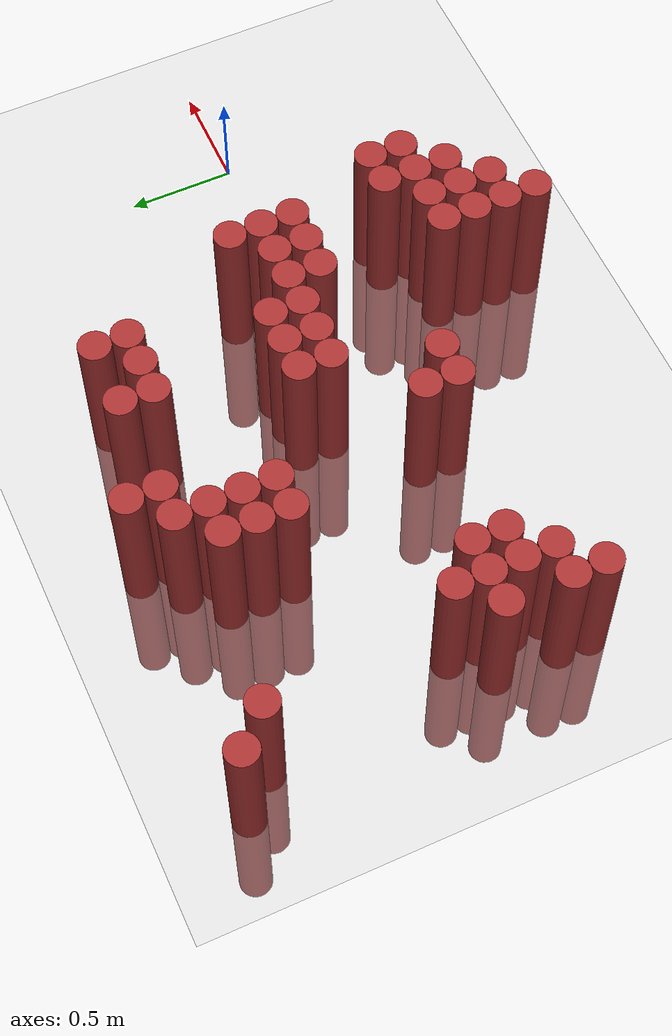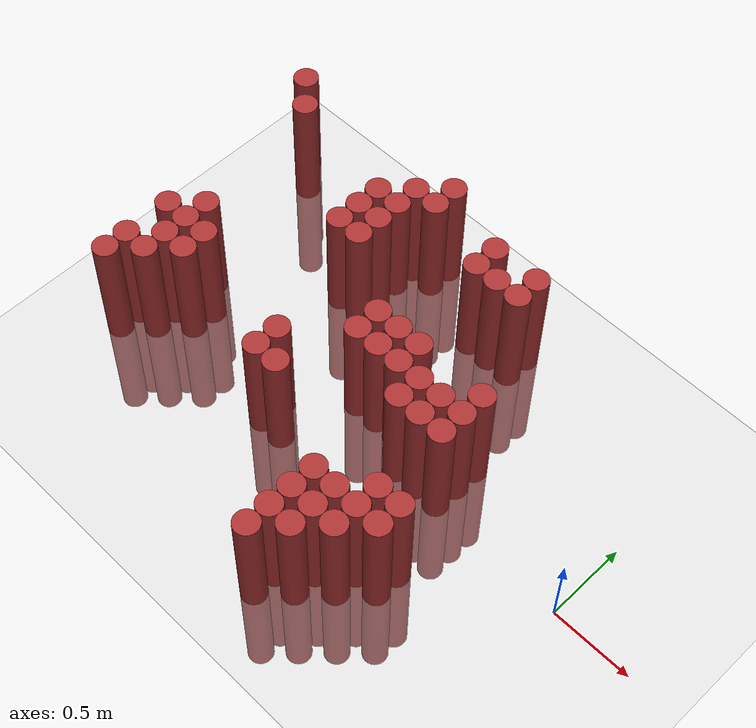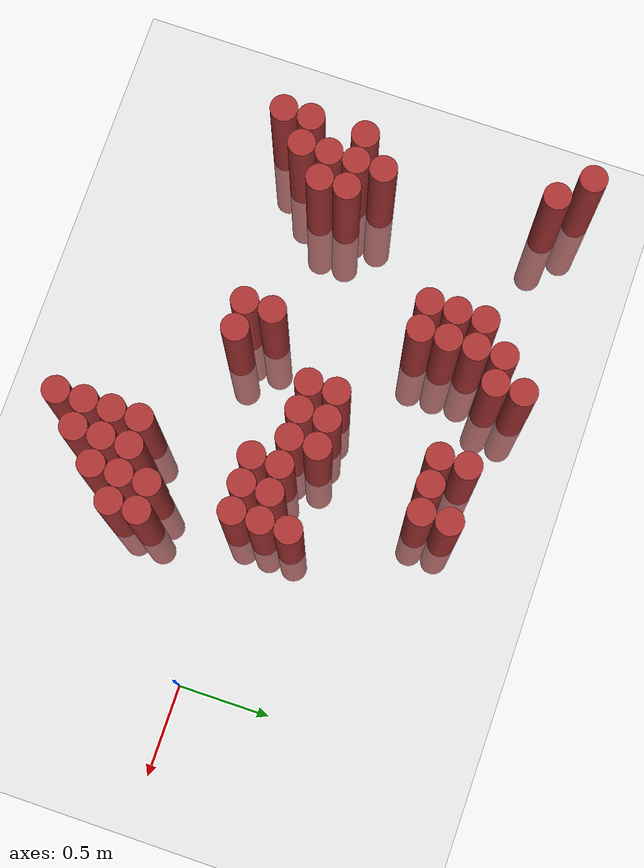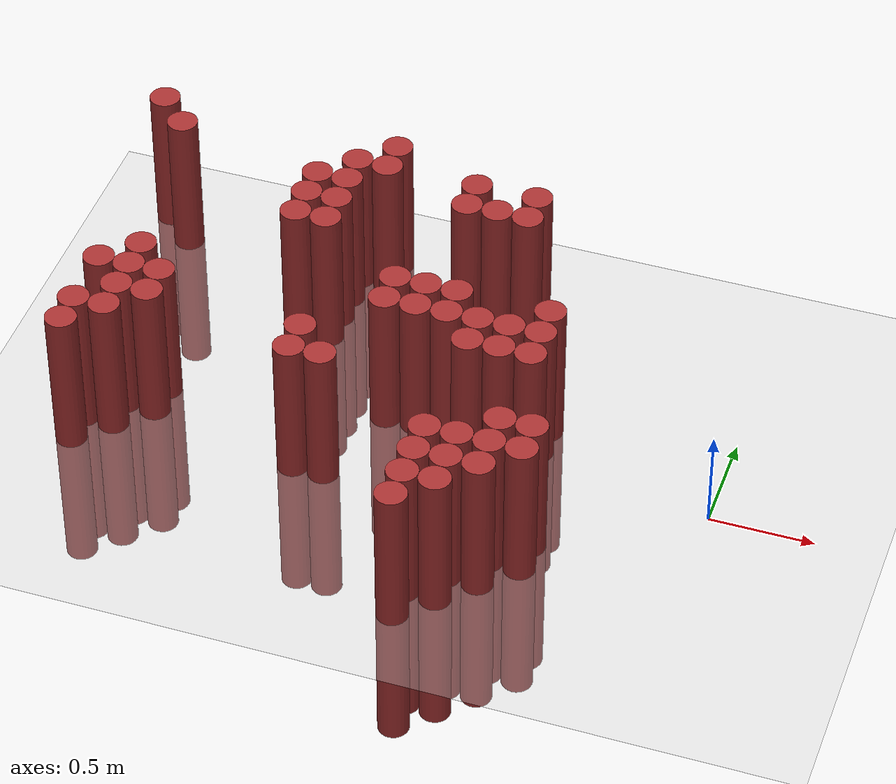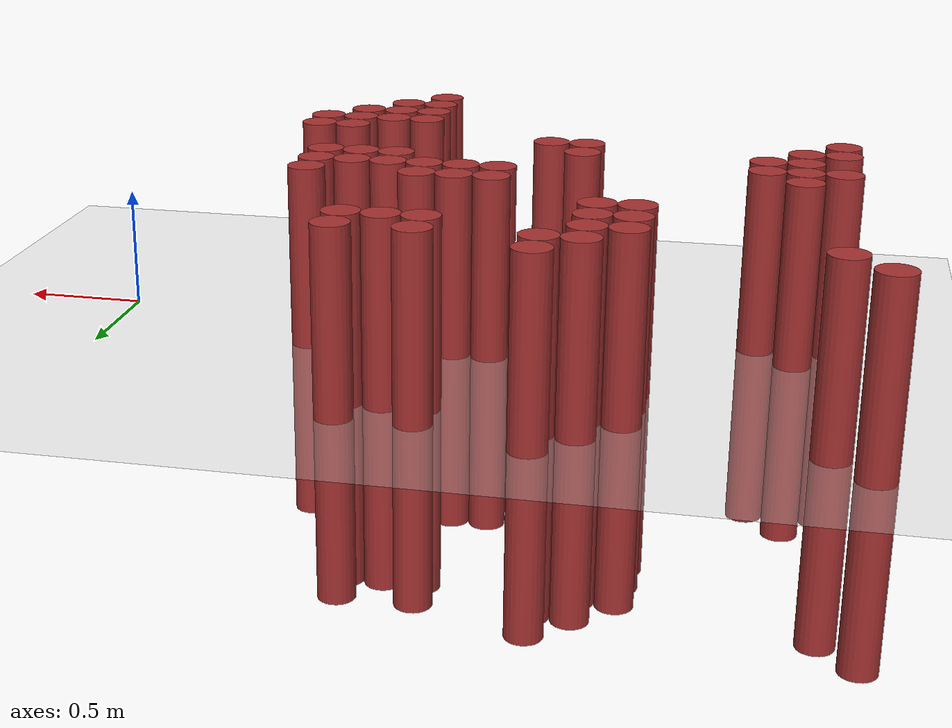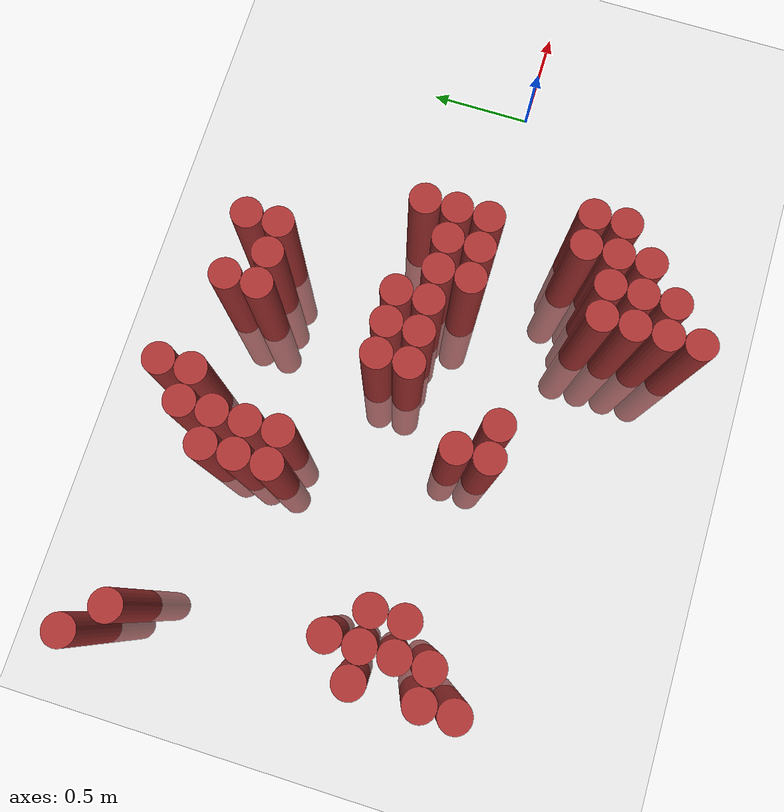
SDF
<sdf version="1.6">
 <world name="default">
  <model name="ground_plane">
   <static>1</static>
   <link name="link">
    <collision name="collision">
     <geometry><plane><normal>0 0 1</normal><size>100 100</size></plane></geometry>
     <surface><friction><ode><mu>100</mu><mu2>50</mu2></ode></friction></surface>
    </collision>
    <visual name="visual">
     <cast_shadows>0</cast_shadows>
     <geometry><plane><normal>0 0 1</normal><size>100 100</size></plane></geometry>
     <material>
      <script><uri>file://media/materials/scripts/gazebo.material</uri><name>Gazebo/Grey</name></script>
     </material>
    </visual>
   </link>
  </model>
  <model name="unit_cylinder_292">
   <static>1</static>
   <pose>-3.125000 1.225000 0.000000 0.000000 0.000000 0.000000</pose>
   <link name="link">
    <inertial>
     <mass>1</mass>
     <inertia><ixx>0.145833</ixx><ixy>0</ixy><ixz>0</ixz><iyy>0.145833</iyy><iyz>0</iyz><izz>0.125</izz></inertia>
    </inertial>
    <collision name="collision">
     <geometry><cylinder><radius>0.075000</radius><length>1.5</length></cylinder></geometry>
    </collision>
    <visual name="visual">
     <geometry><cylinder><radius>0.075000</radius><length>1.5</length></cylinder></geometry>
     <material>
      <ambient>0.648000 0.192000 0.192000 1</ambient>
      <diffuse>0.648000 0.192000 0.192000 1</diffuse>
     </material>
     <material>
      <script><name>Gazebo/Grey</name><uri>file://media/materials/scripts/gazebo.material</uri></script>
     </material>
    </visual>
   </link>
  </model>
  <model name="unit_cylinder_299">
   <static>1</static>
   <pose>-2.975000 -0.425000 0.000000 0.000000 0.000000 0.000000</pose>
   <link name="link">
    <inertial>
     <mass>1</mass>
     <inertia><ixx>0.145833</ixx><ixy>0</ixy><ixz>0</ixz><iyy>0.145833</iyy><iyz>0</iyz><izz>0.125</izz></inertia>
    </inertial>
    <collision name="collision">
     <geometry><cylinder><radius>0.075000</radius><length>1.5</length></cylinder></geometry>
    </collision>
    <visual name="visual">
     <geometry><cylinder><radius>0.075000</radius><length>1.5</length></cylinder></geometry>
     <material>
      <ambient>0.648000 0.192000 0.192000 1</ambient>
      <diffuse>0.648000 0.192000 0.192000 1</diffuse>
     </material>
     <material>
      <script><name>Gazebo/Grey</name><uri>file://media/materials/scripts/gazebo.material</uri></script>
     </material>
    </visual>
   </link>
  </model>
  <model name="unit_cylinder_300">
   <static>1</static>
   <pose>-2.975000 -0.275000 0.000000 0.000000 0.000000 0.000000</pose>
   <link name="link">
    <inertial>
     <mass>1</mass>
     <inertia><ixx>0.145833</ixx><ixy>0</ixy><ixz>0</ixz><iyy>0.145833</iyy><iyz>0</iyz><izz>0.125</izz></inertia>
    </inertial>
    <collision name="collision">
     <geometry><cylinder><radius>0.075000</radius><length>1.5</length></cylinder></geometry>
    </collision>
    <visual name="visual">
     <geometry><cylinder><radius>0.075000</radius><length>1.5</length></cylinder></geometry>
     <material>
      <ambient>0.648000 0.192000 0.192000 1</ambient>
      <diffuse>0.648000 0.192000 0.192000 1</diffuse>
     </material>
     <material>
      <script><name>Gazebo/Grey</name><uri>file://media/materials/scripts/gazebo.material</uri></script>
     </material>
    </visual>
   </link>
  </model>
  <model name="unit_cylinder_301">
   <static>1</static>
   <pose>-2.975000 0.025000 0.000000 0.000000 0.000000 0.000000</pose>
   <link name="link">
    <inertial>
     <mass>1</mass>
     <inertia><ixx>0.145833</ixx><ixy>0</ixy><ixz>0</ixz><iyy>0.145833</iyy><iyz>0</iyz><izz>0.125</izz></inertia>
    </inertial>
    <collision name="collision">
     <geometry><cylinder><radius>0.075000</radius><length>1.5</length></cylinder></geometry>
    </collision>
    <visual name="visual">
     <geometry><cylinder><radius>0.075000</radius><length>1.5</length></cylinder></geometry>
     <material>
      <ambient>0.648000 0.192000 0.192000 1</ambient>
      <diffuse>0.648000 0.192000 0.192000 1</diffuse>
     </material>
     <material>
      <script><name>Gazebo/Grey</name><uri>file://media/materials/scripts/gazebo.material</uri></script>
     </material>
    </visual>
   </link>
  </model>
  <model name="unit_cylinder_302">
   <static>1</static>
   <pose>-2.975000 1.075000 0.000000 0.000000 0.000000 0.000000</pose>
   <link name="link">
    <inertial>
     <mass>1</mass>
     <inertia><ixx>0.145833</ixx><ixy>0</ixy><ixz>0</ixz><iyy>0.145833</iyy><iyz>0</iyz><izz>0.125</izz></inertia>
    </inertial>
    <collision name="collision">
     <geometry><cylinder><radius>0.075000</radius><length>1.5</length></cylinder></geometry>
    </collision>
    <visual name="visual">
     <geometry><cylinder><radius>0.075000</radius><length>1.5</length></cylinder></geometry>
     <material>
      <ambient>0.648000 0.192000 0.192000 1</ambient>
      <diffuse>0.648000 0.192000 0.192000 1</diffuse>
     </material>
     <material>
      <script><name>Gazebo/Grey</name><uri>file://media/materials/scripts/gazebo.material</uri></script>
     </material>
    </visual>
   </link>
  </model>
  <model name="unit_cylinder_309">
   <static>1</static>
   <pose>-2.825000 -0.275000 0.000000 0.000000 0.000000 0.000000</pose>
   <link name="link">
    <inertial>
     <mass>1</mass>
     <inertia><ixx>0.145833</ixx><ixy>0</ixy><ixz>0</ixz><iyy>0.145833</iyy><iyz>0</iyz><izz>0.125</izz></inertia>
    </inertial>
    <collision name="collision">
     <geometry><cylinder><radius>0.075000</radius><length>1.5</length></cylinder></geometry>
    </collision>
    <visual name="visual">
     <geometry><cylinder><radius>0.075000</radius><length>1.5</length></cylinder></geometry>
     <material>
      <ambient>0.648000 0.192000 0.192000 1</ambient>
      <diffuse>0.648000 0.192000 0.192000 1</diffuse>
     </material>
     <material>
      <script><name>Gazebo/Grey</name><uri>file://media/materials/scripts/gazebo.material</uri></script>
     </material>
    </visual>
   </link>
  </model>
  <model name="unit_cylinder_310">
   <static>1</static>
   <pose>-2.825000 -0.125000 0.000000 0.000000 0.000000 0.000000</pose>
   <link name="link">
    <inertial>
     <mass>1</mass>
     <inertia><ixx>0.145833</ixx><ixy>0</ixy><ixz>0</ixz><iyy>0.145833</iyy><iyz>0</iyz><izz>0.125</izz></inertia>
    </inertial>
    <collision name="collision">
     <geometry><cylinder><radius>0.075000</radius><length>1.5</length></cylinder></geometry>
    </collision>
    <visual name="visual">
     <geometry><cylinder><radius>0.075000</radius><length>1.5</length></cylinder></geometry>
     <material>
      <ambient>0.648000 0.192000 0.192000 1</ambient>
      <diffuse>0.648000 0.192000 0.192000 1</diffuse>
     </material>
     <material>
      <script><name>Gazebo/Grey</name><uri>file://media/materials/scripts/gazebo.material</uri></script>
     </material>
    </visual>
   </link>
  </model>
  <model name="unit_cylinder_311">
   <static>1</static>
   <pose>-2.825000 0.025000 0.000000 0.000000 0.000000 0.000000</pose>
   <link name="link">
    <inertial>
     <mass>1</mass>
     <inertia><ixx>0.145833</ixx><ixy>0</ixy><ixz>0</ixz><iyy>0.145833</iyy><iyz>0</iyz><izz>0.125</izz></inertia>
    </inertial>
    <collision name="collision">
     <geometry><cylinder><radius>0.075000</radius><length>1.5</length></cylinder></geometry>
    </collision>
    <visual name="visual">
     <geometry><cylinder><radius>0.075000</radius><length>1.5</length></cylinder></geometry>
     <material>
      <ambient>0.648000 0.192000 0.192000 1</ambient>
      <diffuse>0.648000 0.192000 0.192000 1</diffuse>
     </material>
     <material>
      <script><name>Gazebo/Grey</name><uri>file://media/materials/scripts/gazebo.material</uri></script>
     </material>
    </visual>
   </link>
  </model>
  <model name="unit_cylinder_312">
   <static>1</static>
   <pose>-2.825000 0.175000 0.000000 0.000000 0.000000 0.000000</pose>
   <link name="link">
    <inertial>
     <mass>1</mass>
     <inertia><ixx>0.145833</ixx><ixy>0</ixy><ixz>0</ixz><iyy>0.145833</iyy><iyz>0</iyz><izz>0.125</izz></inertia>
    </inertial>
    <collision name="collision">
     <geometry><cylinder><radius>0.075000</radius><length>1.5</length></cylinder></geometry>
    </collision>
    <visual name="visual">
     <geometry><cylinder><radius>0.075000</radius><length>1.5</length></cylinder></geometry>
     <material>
      <ambient>0.648000 0.192000 0.192000 1</ambient>
      <diffuse>0.648000 0.192000 0.192000 1</diffuse>
     </material>
     <material>
      <script><name>Gazebo/Grey</name><uri>file://media/materials/scripts/gazebo.material</uri></script>
     </material>
    </visual>
   </link>
  </model>
  <model name="unit_cylinder_318">
   <static>1</static>
   <pose>-2.675000 -0.125000 0.000000 0.000000 0.000000 0.000000</pose>
   <link name="link">
    <inertial>
     <mass>1</mass>
     <inertia><ixx>0.145833</ixx><ixy>0</ixy><ixz>0</ixz><iyy>0.145833</iyy><iyz>0</iyz><izz>0.125</izz></inertia>
    </inertial>
    <collision name="collision">
     <geometry><cylinder><radius>0.075000</radius><length>1.5</length></cylinder></geometry>
    </collision>
    <visual name="visual">
     <geometry><cylinder><radius>0.075000</radius><length>1.5</length></cylinder></geometry>
     <material>
      <ambient>0.648000 0.192000 0.192000 1</ambient>
      <diffuse>0.648000 0.192000 0.192000 1</diffuse>
     </material>
     <material>
      <script><name>Gazebo/Grey</name><uri>file://media/materials/scripts/gazebo.material</uri></script>
     </material>
    </visual>
   </link>
  </model>
  <model name="unit_cylinder_319">
   <static>1</static>
   <pose>-2.675000 0.025000 0.000000 0.000000 0.000000 0.000000</pose>
   <link name="link">
    <inertial>
     <mass>1</mass>
     <inertia><ixx>0.145833</ixx><ixy>0</ixy><ixz>0</ixz><iyy>0.145833</iyy><iyz>0</iyz><izz>0.125</izz></inertia>
    </inertial>
    <collision name="collision">
     <geometry><cylinder><radius>0.075000</radius><length>1.5</length></cylinder></geometry>
    </collision>
    <visual name="visual">
     <geometry><cylinder><radius>0.075000</radius><length>1.5</length></cylinder></geometry>
     <material>
      <ambient>0.648000 0.192000 0.192000 1</ambient>
      <diffuse>0.648000 0.192000 0.192000 1</diffuse>
     </material>
     <material>
      <script><name>Gazebo/Grey</name><uri>file://media/materials/scripts/gazebo.material</uri></script>
     </material>
    </visual>
   </link>
  </model>
  <model name="unit_cylinder_335">
   <static>1</static>
   <pose>-2.225000 0.625000 0.000000 0.000000 0.000000 0.000000</pose>
   <link name="link">
    <inertial>
     <mass>1</mass>
     <inertia><ixx>0.145833</ixx><ixy>0</ixy><ixz>0</ixz><iyy>0.145833</iyy><iyz>0</iyz><izz>0.125</izz></inertia>
    </inertial>
    <collision name="collision">
     <geometry><cylinder><radius>0.075000</radius><length>1.5</length></cylinder></geometry>
    </collision>
    <visual name="visual">
     <geometry><cylinder><radius>0.075000</radius><length>1.5</length></cylinder></geometry>
     <material>
      <ambient>0.648000 0.192000 0.192000 1</ambient>
      <diffuse>0.648000 0.192000 0.192000 1</diffuse>
     </material>
     <material>
      <script><name>Gazebo/Grey</name><uri>file://media/materials/scripts/gazebo.material</uri></script>
     </material>
    </visual>
   </link>
  </model>
  <model name="unit_cylinder_336">
   <static>1</static>
   <pose>-2.225000 0.775000 0.000000 0.000000 0.000000 0.000000</pose>
   <link name="link">
    <inertial>
     <mass>1</mass>
     <inertia><ixx>0.145833</ixx><ixy>0</ixy><ixz>0</ixz><iyy>0.145833</iyy><iyz>0</iyz><izz>0.125</izz></inertia>
    </inertial>
    <collision name="collision">
     <geometry><cylinder><radius>0.075000</radius><length>1.5</length></cylinder></geometry>
    </collision>
    <visual name="visual">
     <geometry><cylinder><radius>0.075000</radius><length>1.5</length></cylinder></geometry>
     <material>
      <ambient>0.648000 0.192000 0.192000 1</ambient>
      <diffuse>0.648000 0.192000 0.192000 1</diffuse>
     </material>
     <material>
      <script><name>Gazebo/Grey</name><uri>file://media/materials/scripts/gazebo.material</uri></script>
     </material>
    </visual>
   </link>
  </model>
  <model name="unit_cylinder_337">
   <static>1</static>
   <pose>-2.225000 0.925000 0.000000 0.000000 0.000000 0.000000</pose>
   <link name="link">
    <inertial>
     <mass>1</mass>
     <inertia><ixx>0.145833</ixx><ixy>0</ixy><ixz>0</ixz><iyy>0.145833</iyy><iyz>0</iyz><izz>0.125</izz></inertia>
    </inertial>
    <collision name="collision">
     <geometry><cylinder><radius>0.075000</radius><length>1.5</length></cylinder></geometry>
    </collision>
    <visual name="visual">
     <geometry><cylinder><radius>0.075000</radius><length>1.5</length></cylinder></geometry>
     <material>
      <ambient>0.648000 0.192000 0.192000 1</ambient>
      <diffuse>0.648000 0.192000 0.192000 1</diffuse>
     </material>
     <material>
      <script><name>Gazebo/Grey</name><uri>file://media/materials/scripts/gazebo.material</uri></script>
     </material>
    </visual>
   </link>
  </model>
  <model name="unit_cylinder_341">
   <static>1</static>
   <pose>-2.075000 0.625000 0.000000 0.000000 0.000000 0.000000</pose>
   <link name="link">
    <inertial>
     <mass>1</mass>
     <inertia><ixx>0.145833</ixx><ixy>0</ixy><ixz>0</ixz><iyy>0.145833</iyy><iyz>0</iyz><izz>0.125</izz></inertia>
    </inertial>
    <collision name="collision">
     <geometry><cylinder><radius>0.075000</radius><length>1.5</length></cylinder></geometry>
    </collision>
    <visual name="visual">
     <geometry><cylinder><radius>0.075000</radius><length>1.5</length></cylinder></geometry>
     <material>
      <ambient>0.648000 0.192000 0.192000 1</ambient>
      <diffuse>0.648000 0.192000 0.192000 1</diffuse>
     </material>
     <material>
      <script><name>Gazebo/Grey</name><uri>file://media/materials/scripts/gazebo.material</uri></script>
     </material>
    </visual>
   </link>
  </model>
  <model name="unit_cylinder_342">
   <static>1</static>
   <pose>-2.075000 0.775000 0.000000 0.000000 0.000000 0.000000</pose>
   <link name="link">
    <inertial>
     <mass>1</mass>
     <inertia><ixx>0.145833</ixx><ixy>0</ixy><ixz>0</ixz><iyy>0.145833</iyy><iyz>0</iyz><izz>0.125</izz></inertia>
    </inertial>
    <collision name="collision">
     <geometry><cylinder><radius>0.075000</radius><length>1.5</length></cylinder></geometry>
    </collision>
    <visual name="visual">
     <geometry><cylinder><radius>0.075000</radius><length>1.5</length></cylinder></geometry>
     <material>
      <ambient>0.648000 0.192000 0.192000 1</ambient>
      <diffuse>0.648000 0.192000 0.192000 1</diffuse>
     </material>
     <material>
      <script><name>Gazebo/Grey</name><uri>file://media/materials/scripts/gazebo.material</uri></script>
     </material>
    </visual>
   </link>
  </model>
  <model name="unit_cylinder_343">
   <static>1</static>
   <pose>-2.075000 0.925000 0.000000 0.000000 0.000000 0.000000</pose>
   <link name="link">
    <inertial>
     <mass>1</mass>
     <inertia><ixx>0.145833</ixx><ixy>0</ixy><ixz>0</ixz><iyy>0.145833</iyy><iyz>0</iyz><izz>0.125</izz></inertia>
    </inertial>
    <collision name="collision">
     <geometry><cylinder><radius>0.075000</radius><length>1.5</length></cylinder></geometry>
    </collision>
    <visual name="visual">
     <geometry><cylinder><radius>0.075000</radius><length>1.5</length></cylinder></geometry>
     <material>
      <ambient>0.648000 0.192000 0.192000 1</ambient>
      <diffuse>0.648000 0.192000 0.192000 1</diffuse>
     </material>
     <material>
      <script><name>Gazebo/Grey</name><uri>file://media/materials/scripts/gazebo.material</uri></script>
     </material>
    </visual>
   </link>
  </model>
  <model name="unit_cylinder_344">
   <static>1</static>
   <pose>-2.075000 1.075000 0.000000 0.000000 0.000000 0.000000</pose>
   <link name="link">
    <inertial>
     <mass>1</mass>
     <inertia><ixx>0.145833</ixx><ixy>0</ixy><ixz>0</ixz><iyy>0.145833</iyy><iyz>0</iyz><izz>0.125</izz></inertia>
    </inertial>
    <collision name="collision">
     <geometry><cylinder><radius>0.075000</radius><length>1.5</length></cylinder></geometry>
    </collision>
    <visual name="visual">
     <geometry><cylinder><radius>0.075000</radius><length>1.5</length></cylinder></geometry>
     <material>
      <ambient>0.648000 0.192000 0.192000 1</ambient>
      <diffuse>0.648000 0.192000 0.192000 1</diffuse>
     </material>
     <material>
      <script><name>Gazebo/Grey</name><uri>file://media/materials/scripts/gazebo.material</uri></script>
     </material>
    </visual>
   </link>
  </model>
  <model name="unit_cylinder_350">
   <static>1</static>
   <pose>-1.925000 -0.275000 0.000000 0.000000 0.000000 0.000000</pose>
   <link name="link">
    <inertial>
     <mass>1</mass>
     <inertia><ixx>0.145833</ixx><ixy>0</ixy><ixz>0</ixz><iyy>0.145833</iyy><iyz>0</iyz><izz>0.125</izz></inertia>
    </inertial>
    <collision name="collision">
     <geometry><cylinder><radius>0.075000</radius><length>1.5</length></cylinder></geometry>
    </collision>
    <visual name="visual">
     <geometry><cylinder><radius>0.075000</radius><length>1.5</length></cylinder></geometry>
     <material>
      <ambient>0.648000 0.192000 0.192000 1</ambient>
      <diffuse>0.648000 0.192000 0.192000 1</diffuse>
     </material>
     <material>
      <script><name>Gazebo/Grey</name><uri>file://media/materials/scripts/gazebo.material</uri></script>
     </material>
    </visual>
   </link>
  </model>
  <model name="unit_cylinder_351">
   <static>1</static>
   <pose>-1.925000 -0.125000 0.000000 0.000000 0.000000 0.000000</pose>
   <link name="link">
    <inertial>
     <mass>1</mass>
     <inertia><ixx>0.145833</ixx><ixy>0</ixy><ixz>0</ixz><iyy>0.145833</iyy><iyz>0</iyz><izz>0.125</izz></inertia>
    </inertial>
    <collision name="collision">
     <geometry><cylinder><radius>0.075000</radius><length>1.5</length></cylinder></geometry>
    </collision>
    <visual name="visual">
     <geometry><cylinder><radius>0.075000</radius><length>1.5</length></cylinder></geometry>
     <material>
      <ambient>0.648000 0.192000 0.192000 1</ambient>
      <diffuse>0.648000 0.192000 0.192000 1</diffuse>
     </material>
     <material>
      <script><name>Gazebo/Grey</name><uri>file://media/materials/scripts/gazebo.material</uri></script>
     </material>
    </visual>
   </link>
  </model>
  <model name="unit_cylinder_352">
   <static>1</static>
   <pose>-1.925000 1.075000 0.000000 0.000000 0.000000 0.000000</pose>
   <link name="link">
    <inertial>
     <mass>1</mass>
     <inertia><ixx>0.145833</ixx><ixy>0</ixy><ixz>0</ixz><iyy>0.145833</iyy><iyz>0</iyz><izz>0.125</izz></inertia>
    </inertial>
    <collision name="collision">
     <geometry><cylinder><radius>0.075000</radius><length>1.5</length></cylinder></geometry>
    </collision>
    <visual name="visual">
     <geometry><cylinder><radius>0.075000</radius><length>1.5</length></cylinder></geometry>
     <material>
      <ambient>0.648000 0.192000 0.192000 1</ambient>
      <diffuse>0.648000 0.192000 0.192000 1</diffuse>
     </material>
     <material>
      <script><name>Gazebo/Grey</name><uri>file://media/materials/scripts/gazebo.material</uri></script>
     </material>
    </visual>
   </link>
  </model>
  <model name="unit_cylinder_353">
   <static>1</static>
   <pose>-1.925000 1.225000 0.000000 0.000000 0.000000 0.000000</pose>
   <link name="link">
    <inertial>
     <mass>1</mass>
     <inertia><ixx>0.145833</ixx><ixy>0</ixy><ixz>0</ixz><iyy>0.145833</iyy><iyz>0</iyz><izz>0.125</izz></inertia>
    </inertial>
    <collision name="collision">
     <geometry><cylinder><radius>0.075000</radius><length>1.5</length></cylinder></geometry>
    </collision>
    <visual name="visual">
     <geometry><cylinder><radius>0.075000</radius><length>1.5</length></cylinder></geometry>
     <material>
      <ambient>0.648000 0.192000 0.192000 1</ambient>
      <diffuse>0.648000 0.192000 0.192000 1</diffuse>
     </material>
     <material>
      <script><name>Gazebo/Grey</name><uri>file://media/materials/scripts/gazebo.material</uri></script>
     </material>
    </visual>
   </link>
  </model>
  <model name="unit_cylinder_360">
   <static>1</static>
   <pose>-1.775000 -0.275000 0.000000 0.000000 0.000000 0.000000</pose>
   <link name="link">
    <inertial>
     <mass>1</mass>
     <inertia><ixx>0.145833</ixx><ixy>0</ixy><ixz>0</ixz><iyy>0.145833</iyy><iyz>0</iyz><izz>0.125</izz></inertia>
    </inertial>
    <collision name="collision">
     <geometry><cylinder><radius>0.075000</radius><length>1.5</length></cylinder></geometry>
    </collision>
    <visual name="visual">
     <geometry><cylinder><radius>0.075000</radius><length>1.5</length></cylinder></geometry>
     <material>
      <ambient>0.648000 0.192000 0.192000 1</ambient>
      <diffuse>0.648000 0.192000 0.192000 1</diffuse>
     </material>
     <material>
      <script><name>Gazebo/Grey</name><uri>file://media/materials/scripts/gazebo.material</uri></script>
     </material>
    </visual>
   </link>
  </model>
  <model name="unit_cylinder_366">
   <static>1</static>
   <pose>-1.625000 0.175000 0.000000 0.000000 0.000000 0.000000</pose>
   <link name="link">
    <inertial>
     <mass>1</mass>
     <inertia><ixx>0.145833</ixx><ixy>0</ixy><ixz>0</ixz><iyy>0.145833</iyy><iyz>0</iyz><izz>0.125</izz></inertia>
    </inertial>
    <collision name="collision">
     <geometry><cylinder><radius>0.075000</radius><length>1.5</length></cylinder></geometry>
    </collision>
    <visual name="visual">
     <geometry><cylinder><radius>0.075000</radius><length>1.5</length></cylinder></geometry>
     <material>
      <ambient>0.648000 0.192000 0.192000 1</ambient>
      <diffuse>0.648000 0.192000 0.192000 1</diffuse>
     </material>
     <material>
      <script><name>Gazebo/Grey</name><uri>file://media/materials/scripts/gazebo.material</uri></script>
     </material>
    </visual>
   </link>
  </model>
  <model name="unit_cylinder_367">
   <static>1</static>
   <pose>-1.625000 0.325000 0.000000 0.000000 0.000000 0.000000</pose>
   <link name="link">
    <inertial>
     <mass>1</mass>
     <inertia><ixx>0.145833</ixx><ixy>0</ixy><ixz>0</ixz><iyy>0.145833</iyy><iyz>0</iyz><izz>0.125</izz></inertia>
    </inertial>
    <collision name="collision">
     <geometry><cylinder><radius>0.075000</radius><length>1.5</length></cylinder></geometry>
    </collision>
    <visual name="visual">
     <geometry><cylinder><radius>0.075000</radius><length>1.5</length></cylinder></geometry>
     <material>
      <ambient>0.648000 0.192000 0.192000 1</ambient>
      <diffuse>0.648000 0.192000 0.192000 1</diffuse>
     </material>
     <material>
      <script><name>Gazebo/Grey</name><uri>file://media/materials/scripts/gazebo.material</uri></script>
     </material>
    </visual>
   </link>
  </model>
  <model name="unit_cylinder_373">
   <static>1</static>
   <pose>-1.475000 0.175000 0.000000 0.000000 0.000000 0.000000</pose>
   <link name="link">
    <inertial>
     <mass>1</mass>
     <inertia><ixx>0.145833</ixx><ixy>0</ixy><ixz>0</ixz><iyy>0.145833</iyy><iyz>0</iyz><izz>0.125</izz></inertia>
    </inertial>
    <collision name="collision">
     <geometry><cylinder><radius>0.075000</radius><length>1.5</length></cylinder></geometry>
    </collision>
    <visual name="visual">
     <geometry><cylinder><radius>0.075000</radius><length>1.5</length></cylinder></geometry>
     <material>
      <ambient>0.648000 0.192000 0.192000 1</ambient>
      <diffuse>0.648000 0.192000 0.192000 1</diffuse>
     </material>
     <material>
      <script><name>Gazebo/Grey</name><uri>file://media/materials/scripts/gazebo.material</uri></script>
     </material>
    </visual>
   </link>
  </model>
  <model name="unit_cylinder_374">
   <static>1</static>
   <pose>-1.475000 0.325000 0.000000 0.000000 0.000000 0.000000</pose>
   <link name="link">
    <inertial>
     <mass>1</mass>
     <inertia><ixx>0.145833</ixx><ixy>0</ixy><ixz>0</ixz><iyy>0.145833</iyy><iyz>0</iyz><izz>0.125</izz></inertia>
    </inertial>
    <collision name="collision">
     <geometry><cylinder><radius>0.075000</radius><length>1.5</length></cylinder></geometry>
    </collision>
    <visual name="visual">
     <geometry><cylinder><radius>0.075000</radius><length>1.5</length></cylinder></geometry>
     <material>
      <ambient>0.648000 0.192000 0.192000 1</ambient>
      <diffuse>0.648000 0.192000 0.192000 1</diffuse>
     </material>
     <material>
      <script><name>Gazebo/Grey</name><uri>file://media/materials/scripts/gazebo.material</uri></script>
     </material>
    </visual>
   </link>
  </model>
  <model name="unit_cylinder_375">
   <static>1</static>
   <pose>-1.475000 0.925000 0.000000 0.000000 0.000000 0.000000</pose>
   <link name="link">
    <inertial>
     <mass>1</mass>
     <inertia><ixx>0.145833</ixx><ixy>0</ixy><ixz>0</ixz><iyy>0.145833</iyy><iyz>0</iyz><izz>0.125</izz></inertia>
    </inertial>
    <collision name="collision">
     <geometry><cylinder><radius>0.075000</radius><length>1.5</length></cylinder></geometry>
    </collision>
    <visual name="visual">
     <geometry><cylinder><radius>0.075000</radius><length>1.5</length></cylinder></geometry>
     <material>
      <ambient>0.648000 0.192000 0.192000 1</ambient>
      <diffuse>0.648000 0.192000 0.192000 1</diffuse>
     </material>
     <material>
      <script><name>Gazebo/Grey</name><uri>file://media/materials/scripts/gazebo.material</uri></script>
     </material>
    </visual>
   </link>
  </model>
  <model name="unit_cylinder_376">
   <static>1</static>
   <pose>-1.475000 1.075000 0.000000 0.000000 0.000000 0.000000</pose>
   <link name="link">
    <inertial>
     <mass>1</mass>
     <inertia><ixx>0.145833</ixx><ixy>0</ixy><ixz>0</ixz><iyy>0.145833</iyy><iyz>0</iyz><izz>0.125</izz></inertia>
    </inertial>
    <collision name="collision">
     <geometry><cylinder><radius>0.075000</radius><length>1.5</length></cylinder></geometry>
    </collision>
    <visual name="visual">
     <geometry><cylinder><radius>0.075000</radius><length>1.5</length></cylinder></geometry>
     <material>
      <ambient>0.648000 0.192000 0.192000 1</ambient>
      <diffuse>0.648000 0.192000 0.192000 1</diffuse>
     </material>
     <material>
      <script><name>Gazebo/Grey</name><uri>file://media/materials/scripts/gazebo.material</uri></script>
     </material>
    </visual>
   </link>
  </model>
  <model name="unit_cylinder_382">
   <static>1</static>
   <pose>-1.325000 0.175000 0.000000 0.000000 0.000000 0.000000</pose>
   <link name="link">
    <inertial>
     <mass>1</mass>
     <inertia><ixx>0.145833</ixx><ixy>0</ixy><ixz>0</ixz><iyy>0.145833</iyy><iyz>0</iyz><izz>0.125</izz></inertia>
    </inertial>
    <collision name="collision">
     <geometry><cylinder><radius>0.075000</radius><length>1.5</length></cylinder></geometry>
    </collision>
    <visual name="visual">
     <geometry><cylinder><radius>0.075000</radius><length>1.5</length></cylinder></geometry>
     <material>
      <ambient>0.648000 0.192000 0.192000 1</ambient>
      <diffuse>0.648000 0.192000 0.192000 1</diffuse>
     </material>
     <material>
      <script><name>Gazebo/Grey</name><uri>file://media/materials/scripts/gazebo.material</uri></script>
     </material>
    </visual>
   </link>
  </model>
  <model name="unit_cylinder_383">
   <static>1</static>
   <pose>-1.325000 0.325000 0.000000 0.000000 0.000000 0.000000</pose>
   <link name="link">
    <inertial>
     <mass>1</mass>
     <inertia><ixx>0.145833</ixx><ixy>0</ixy><ixz>0</ixz><iyy>0.145833</iyy><iyz>0</iyz><izz>0.125</izz></inertia>
    </inertial>
    <collision name="collision">
     <geometry><cylinder><radius>0.075000</radius><length>1.5</length></cylinder></geometry>
    </collision>
    <visual name="visual">
     <geometry><cylinder><radius>0.075000</radius><length>1.5</length></cylinder></geometry>
     <material>
      <ambient>0.648000 0.192000 0.192000 1</ambient>
      <diffuse>0.648000 0.192000 0.192000 1</diffuse>
     </material>
     <material>
      <script><name>Gazebo/Grey</name><uri>file://media/materials/scripts/gazebo.material</uri></script>
     </material>
    </visual>
   </link>
  </model>
  <model name="unit_cylinder_384">
   <static>1</static>
   <pose>-1.325000 0.925000 0.000000 0.000000 0.000000 0.000000</pose>
   <link name="link">
    <inertial>
     <mass>1</mass>
     <inertia><ixx>0.145833</ixx><ixy>0</ixy><ixz>0</ixz><iyy>0.145833</iyy><iyz>0</iyz><izz>0.125</izz></inertia>
    </inertial>
    <collision name="collision">
     <geometry><cylinder><radius>0.075000</radius><length>1.5</length></cylinder></geometry>
    </collision>
    <visual name="visual">
     <geometry><cylinder><radius>0.075000</radius><length>1.5</length></cylinder></geometry>
     <material>
      <ambient>0.648000 0.192000 0.192000 1</ambient>
      <diffuse>0.648000 0.192000 0.192000 1</diffuse>
     </material>
     <material>
      <script><name>Gazebo/Grey</name><uri>file://media/materials/scripts/gazebo.material</uri></script>
     </material>
    </visual>
   </link>
  </model>
  <model name="unit_cylinder_389">
   <static>1</static>
   <pose>-1.175000 -1.025000 0.000000 0.000000 0.000000 0.000000</pose>
   <link name="link">
    <inertial>
     <mass>1</mass>
     <inertia><ixx>0.145833</ixx><ixy>0</ixy><ixz>0</ixz><iyy>0.145833</iyy><iyz>0</iyz><izz>0.125</izz></inertia>
    </inertial>
    <collision name="collision">
     <geometry><cylinder><radius>0.075000</radius><length>1.5</length></cylinder></geometry>
    </collision>
    <visual name="visual">
     <geometry><cylinder><radius>0.075000</radius><length>1.5</length></cylinder></geometry>
     <material>
      <ambient>0.648000 0.192000 0.192000 1</ambient>
      <diffuse>0.648000 0.192000 0.192000 1</diffuse>
     </material>
     <material>
      <script><name>Gazebo/Grey</name><uri>file://media/materials/scripts/gazebo.material</uri></script>
     </material>
    </visual>
   </link>
  </model>
  <model name="unit_cylinder_390">
   <static>1</static>
   <pose>-1.175000 -0.875000 0.000000 0.000000 0.000000 0.000000</pose>
   <link name="link">
    <inertial>
     <mass>1</mass>
     <inertia><ixx>0.145833</ixx><ixy>0</ixy><ixz>0</ixz><iyy>0.145833</iyy><iyz>0</iyz><izz>0.125</izz></inertia>
    </inertial>
    <collision name="collision">
     <geometry><cylinder><radius>0.075000</radius><length>1.5</length></cylinder></geometry>
    </collision>
    <visual name="visual">
     <geometry><cylinder><radius>0.075000</radius><length>1.5</length></cylinder></geometry>
     <material>
      <ambient>0.648000 0.192000 0.192000 1</ambient>
      <diffuse>0.648000 0.192000 0.192000 1</diffuse>
     </material>
     <material>
      <script><name>Gazebo/Grey</name><uri>file://media/materials/scripts/gazebo.material</uri></script>
     </material>
    </visual>
   </link>
  </model>
  <model name="unit_cylinder_391">
   <static>1</static>
   <pose>-1.175000 -0.725000 0.000000 0.000000 0.000000 0.000000</pose>
   <link name="link">
    <inertial>
     <mass>1</mass>
     <inertia><ixx>0.145833</ixx><ixy>0</ixy><ixz>0</ixz><iyy>0.145833</iyy><iyz>0</iyz><izz>0.125</izz></inertia>
    </inertial>
    <collision name="collision">
     <geometry><cylinder><radius>0.075000</radius><length>1.5</length></cylinder></geometry>
    </collision>
    <visual name="visual">
     <geometry><cylinder><radius>0.075000</radius><length>1.5</length></cylinder></geometry>
     <material>
      <ambient>0.648000 0.192000 0.192000 1</ambient>
      <diffuse>0.648000 0.192000 0.192000 1</diffuse>
     </material>
     <material>
      <script><name>Gazebo/Grey</name><uri>file://media/materials/scripts/gazebo.material</uri></script>
     </material>
    </visual>
   </link>
  </model>
  <model name="unit_cylinder_392">
   <static>1</static>
   <pose>-1.175000 -0.575000 0.000000 0.000000 0.000000 0.000000</pose>
   <link name="link">
    <inertial>
     <mass>1</mass>
     <inertia><ixx>0.145833</ixx><ixy>0</ixy><ixz>0</ixz><iyy>0.145833</iyy><iyz>0</iyz><izz>0.125</izz></inertia>
    </inertial>
    <collision name="collision">
     <geometry><cylinder><radius>0.075000</radius><length>1.5</length></cylinder></geometry>
    </collision>
    <visual name="visual">
     <geometry><cylinder><radius>0.075000</radius><length>1.5</length></cylinder></geometry>
     <material>
      <ambient>0.648000 0.192000 0.192000 1</ambient>
      <diffuse>0.648000 0.192000 0.192000 1</diffuse>
     </material>
     <material>
      <script><name>Gazebo/Grey</name><uri>file://media/materials/scripts/gazebo.material</uri></script>
     </material>
    </visual>
   </link>
  </model>
  <model name="unit_cylinder_393">
   <static>1</static>
   <pose>-1.175000 0.025000 0.000000 0.000000 0.000000 0.000000</pose>
   <link name="link">
    <inertial>
     <mass>1</mass>
     <inertia><ixx>0.145833</ixx><ixy>0</ixy><ixz>0</ixz><iyy>0.145833</iyy><iyz>0</iyz><izz>0.125</izz></inertia>
    </inertial>
    <collision name="collision">
     <geometry><cylinder><radius>0.075000</radius><length>1.5</length></cylinder></geometry>
    </collision>
    <visual name="visual">
     <geometry><cylinder><radius>0.075000</radius><length>1.5</length></cylinder></geometry>
     <material>
      <ambient>0.648000 0.192000 0.192000 1</ambient>
      <diffuse>0.648000 0.192000 0.192000 1</diffuse>
     </material>
     <material>
      <script><name>Gazebo/Grey</name><uri>file://media/materials/scripts/gazebo.material</uri></script>
     </material>
    </visual>
   </link>
  </model>
  <model name="unit_cylinder_394">
   <static>1</static>
   <pose>-1.175000 0.175000 0.000000 0.000000 0.000000 0.000000</pose>
   <link name="link">
    <inertial>
     <mass>1</mass>
     <inertia><ixx>0.145833</ixx><ixy>0</ixy><ixz>0</ixz><iyy>0.145833</iyy><iyz>0</iyz><izz>0.125</izz></inertia>
    </inertial>
    <collision name="collision">
     <geometry><cylinder><radius>0.075000</radius><length>1.5</length></cylinder></geometry>
    </collision>
    <visual name="visual">
     <geometry><cylinder><radius>0.075000</radius><length>1.5</length></cylinder></geometry>
     <material>
      <ambient>0.648000 0.192000 0.192000 1</ambient>
      <diffuse>0.648000 0.192000 0.192000 1</diffuse>
     </material>
     <material>
      <script><name>Gazebo/Grey</name><uri>file://media/materials/scripts/gazebo.material</uri></script>
     </material>
    </visual>
   </link>
  </model>
  <model name="unit_cylinder_395">
   <static>1</static>
   <pose>-1.175000 0.925000 0.000000 0.000000 0.000000 0.000000</pose>
   <link name="link">
    <inertial>
     <mass>1</mass>
     <inertia><ixx>0.145833</ixx><ixy>0</ixy><ixz>0</ixz><iyy>0.145833</iyy><iyz>0</iyz><izz>0.125</izz></inertia>
    </inertial>
    <collision name="collision">
     <geometry><cylinder><radius>0.075000</radius><length>1.5</length></cylinder></geometry>
    </collision>
    <visual name="visual">
     <geometry><cylinder><radius>0.075000</radius><length>1.5</length></cylinder></geometry>
     <material>
      <ambient>0.648000 0.192000 0.192000 1</ambient>
      <diffuse>0.648000 0.192000 0.192000 1</diffuse>
     </material>
     <material>
      <script><name>Gazebo/Grey</name><uri>file://media/materials/scripts/gazebo.material</uri></script>
     </material>
    </visual>
   </link>
  </model>
  <model name="unit_cylinder_396">
   <static>1</static>
   <pose>-1.175000 1.075000 0.000000 0.000000 0.000000 0.000000</pose>
   <link name="link">
    <inertial>
     <mass>1</mass>
     <inertia><ixx>0.145833</ixx><ixy>0</ixy><ixz>0</ixz><iyy>0.145833</iyy><iyz>0</iyz><izz>0.125</izz></inertia>
    </inertial>
    <collision name="collision">
     <geometry><cylinder><radius>0.075000</radius><length>1.5</length></cylinder></geometry>
    </collision>
    <visual name="visual">
     <geometry><cylinder><radius>0.075000</radius><length>1.5</length></cylinder></geometry>
     <material>
      <ambient>0.648000 0.192000 0.192000 1</ambient>
      <diffuse>0.648000 0.192000 0.192000 1</diffuse>
     </material>
     <material>
      <script><name>Gazebo/Grey</name><uri>file://media/materials/scripts/gazebo.material</uri></script>
     </material>
    </visual>
   </link>
  </model>
  <model name="unit_cylinder_408">
   <static>1</static>
   <pose>-1.025000 -0.875000 0.000000 0.000000 0.000000 0.000000</pose>
   <link name="link">
    <inertial>
     <mass>1</mass>
     <inertia><ixx>0.145833</ixx><ixy>0</ixy><ixz>0</ixz><iyy>0.145833</iyy><iyz>0</iyz><izz>0.125</izz></inertia>
    </inertial>
    <collision name="collision">
     <geometry><cylinder><radius>0.075000</radius><length>1.5</length></cylinder></geometry>
    </collision>
    <visual name="visual">
     <geometry><cylinder><radius>0.075000</radius><length>1.5</length></cylinder></geometry>
     <material>
      <ambient>0.648000 0.192000 0.192000 1</ambient>
      <diffuse>0.648000 0.192000 0.192000 1</diffuse>
     </material>
     <material>
      <script><name>Gazebo/Grey</name><uri>file://media/materials/scripts/gazebo.material</uri></script>
     </material>
    </visual>
   </link>
  </model>
  <model name="unit_cylinder_409">
   <static>1</static>
   <pose>-1.025000 -0.725000 0.000000 0.000000 0.000000 0.000000</pose>
   <link name="link">
    <inertial>
     <mass>1</mass>
     <inertia><ixx>0.145833</ixx><ixy>0</ixy><ixz>0</ixz><iyy>0.145833</iyy><iyz>0</iyz><izz>0.125</izz></inertia>
    </inertial>
    <collision name="collision">
     <geometry><cylinder><radius>0.075000</radius><length>1.5</length></cylinder></geometry>
    </collision>
    <visual name="visual">
     <geometry><cylinder><radius>0.075000</radius><length>1.5</length></cylinder></geometry>
     <material>
      <ambient>0.648000 0.192000 0.192000 1</ambient>
      <diffuse>0.648000 0.192000 0.192000 1</diffuse>
     </material>
     <material>
      <script><name>Gazebo/Grey</name><uri>file://media/materials/scripts/gazebo.material</uri></script>
     </material>
    </visual>
   </link>
  </model>
  <model name="unit_cylinder_410">
   <static>1</static>
   <pose>-1.025000 -0.575000 0.000000 0.000000 0.000000 0.000000</pose>
   <link name="link">
    <inertial>
     <mass>1</mass>
     <inertia><ixx>0.145833</ixx><ixy>0</ixy><ixz>0</ixz><iyy>0.145833</iyy><iyz>0</iyz><izz>0.125</izz></inertia>
    </inertial>
    <collision name="collision">
     <geometry><cylinder><radius>0.075000</radius><length>1.5</length></cylinder></geometry>
    </collision>
    <visual name="visual">
     <geometry><cylinder><radius>0.075000</radius><length>1.5</length></cylinder></geometry>
     <material>
      <ambient>0.648000 0.192000 0.192000 1</ambient>
      <diffuse>0.648000 0.192000 0.192000 1</diffuse>
     </material>
     <material>
      <script><name>Gazebo/Grey</name><uri>file://media/materials/scripts/gazebo.material</uri></script>
     </material>
    </visual>
   </link>
  </model>
  <model name="unit_cylinder_411">
   <static>1</static>
   <pose>-1.025000 0.025000 0.000000 0.000000 0.000000 0.000000</pose>
   <link name="link">
    <inertial>
     <mass>1</mass>
     <inertia><ixx>0.145833</ixx><ixy>0</ixy><ixz>0</ixz><iyy>0.145833</iyy><iyz>0</iyz><izz>0.125</izz></inertia>
    </inertial>
    <collision name="collision">
     <geometry><cylinder><radius>0.075000</radius><length>1.5</length></cylinder></geometry>
    </collision>
    <visual name="visual">
     <geometry><cylinder><radius>0.075000</radius><length>1.5</length></cylinder></geometry>
     <material>
      <ambient>0.648000 0.192000 0.192000 1</ambient>
      <diffuse>0.648000 0.192000 0.192000 1</diffuse>
     </material>
     <material>
      <script><name>Gazebo/Grey</name><uri>file://media/materials/scripts/gazebo.material</uri></script>
     </material>
    </visual>
   </link>
  </model>
  <model name="unit_cylinder_412">
   <static>1</static>
   <pose>-1.025000 0.175000 0.000000 0.000000 0.000000 0.000000</pose>
   <link name="link">
    <inertial>
     <mass>1</mass>
     <inertia><ixx>0.145833</ixx><ixy>0</ixy><ixz>0</ixz><iyy>0.145833</iyy><iyz>0</iyz><izz>0.125</izz></inertia>
    </inertial>
    <collision name="collision">
     <geometry><cylinder><radius>0.075000</radius><length>1.5</length></cylinder></geometry>
    </collision>
    <visual name="visual">
     <geometry><cylinder><radius>0.075000</radius><length>1.5</length></cylinder></geometry>
     <material>
      <ambient>0.648000 0.192000 0.192000 1</ambient>
      <diffuse>0.648000 0.192000 0.192000 1</diffuse>
     </material>
     <material>
      <script><name>Gazebo/Grey</name><uri>file://media/materials/scripts/gazebo.material</uri></script>
     </material>
    </visual>
   </link>
  </model>
  <model name="unit_cylinder_418">
   <static>1</static>
   <pose>-0.875000 -0.725000 0.000000 0.000000 0.000000 0.000000</pose>
   <link name="link">
    <inertial>
     <mass>1</mass>
     <inertia><ixx>0.145833</ixx><ixy>0</ixy><ixz>0</ixz><iyy>0.145833</iyy><iyz>0</iyz><izz>0.125</izz></inertia>
    </inertial>
    <collision name="collision">
     <geometry><cylinder><radius>0.075000</radius><length>1.5</length></cylinder></geometry>
    </collision>
    <visual name="visual">
     <geometry><cylinder><radius>0.075000</radius><length>1.5</length></cylinder></geometry>
     <material>
      <ambient>0.648000 0.192000 0.192000 1</ambient>
      <diffuse>0.648000 0.192000 0.192000 1</diffuse>
     </material>
     <material>
      <script><name>Gazebo/Grey</name><uri>file://media/materials/scripts/gazebo.material</uri></script>
     </material>
    </visual>
   </link>
  </model>
  <model name="unit_cylinder_419">
   <static>1</static>
   <pose>-0.875000 -0.575000 0.000000 0.000000 0.000000 0.000000</pose>
   <link name="link">
    <inertial>
     <mass>1</mass>
     <inertia><ixx>0.145833</ixx><ixy>0</ixy><ixz>0</ixz><iyy>0.145833</iyy><iyz>0</iyz><izz>0.125</izz></inertia>
    </inertial>
    <collision name="collision">
     <geometry><cylinder><radius>0.075000</radius><length>1.5</length></cylinder></geometry>
    </collision>
    <visual name="visual">
     <geometry><cylinder><radius>0.075000</radius><length>1.5</length></cylinder></geometry>
     <material>
      <ambient>0.648000 0.192000 0.192000 1</ambient>
      <diffuse>0.648000 0.192000 0.192000 1</diffuse>
     </material>
     <material>
      <script><name>Gazebo/Grey</name><uri>file://media/materials/scripts/gazebo.material</uri></script>
     </material>
    </visual>
   </link>
  </model>
  <model name="unit_cylinder_420">
   <static>1</static>
   <pose>-0.875000 -0.425000 0.000000 0.000000 0.000000 0.000000</pose>
   <link name="link">
    <inertial>
     <mass>1</mass>
     <inertia><ixx>0.145833</ixx><ixy>0</ixy><ixz>0</ixz><iyy>0.145833</iyy><iyz>0</iyz><izz>0.125</izz></inertia>
    </inertial>
    <collision name="collision">
     <geometry><cylinder><radius>0.075000</radius><length>1.5</length></cylinder></geometry>
    </collision>
    <visual name="visual">
     <geometry><cylinder><radius>0.075000</radius><length>1.5</length></cylinder></geometry>
     <material>
      <ambient>0.648000 0.192000 0.192000 1</ambient>
      <diffuse>0.648000 0.192000 0.192000 1</diffuse>
     </material>
     <material>
      <script><name>Gazebo/Grey</name><uri>file://media/materials/scripts/gazebo.material</uri></script>
     </material>
    </visual>
   </link>
  </model>
  <model name="unit_cylinder_421">
   <static>1</static>
   <pose>-0.875000 0.025000 0.000000 0.000000 0.000000 0.000000</pose>
   <link name="link">
    <inertial>
     <mass>1</mass>
     <inertia><ixx>0.145833</ixx><ixy>0</ixy><ixz>0</ixz><iyy>0.145833</iyy><iyz>0</iyz><izz>0.125</izz></inertia>
    </inertial>
    <collision name="collision">
     <geometry><cylinder><radius>0.075000</radius><length>1.5</length></cylinder></geometry>
    </collision>
    <visual name="visual">
     <geometry><cylinder><radius>0.075000</radius><length>1.5</length></cylinder></geometry>
     <material>
      <ambient>0.648000 0.192000 0.192000 1</ambient>
      <diffuse>0.648000 0.192000 0.192000 1</diffuse>
     </material>
     <material>
      <script><name>Gazebo/Grey</name><uri>file://media/materials/scripts/gazebo.material</uri></script>
     </material>
    </visual>
   </link>
  </model>
  <model name="unit_cylinder_422">
   <static>1</static>
   <pose>-0.875000 0.175000 0.000000 0.000000 0.000000 0.000000</pose>
   <link name="link">
    <inertial>
     <mass>1</mass>
     <inertia><ixx>0.145833</ixx><ixy>0</ixy><ixz>0</ixz><iyy>0.145833</iyy><iyz>0</iyz><izz>0.125</izz></inertia>
    </inertial>
    <collision name="collision">
     <geometry><cylinder><radius>0.075000</radius><length>1.5</length></cylinder></geometry>
    </collision>
    <visual name="visual">
     <geometry><cylinder><radius>0.075000</radius><length>1.5</length></cylinder></geometry>
     <material>
      <ambient>0.648000 0.192000 0.192000 1</ambient>
      <diffuse>0.648000 0.192000 0.192000 1</diffuse>
     </material>
     <material>
      <script><name>Gazebo/Grey</name><uri>file://media/materials/scripts/gazebo.material</uri></script>
     </material>
    </visual>
   </link>
  </model>
  <model name="unit_cylinder_423">
   <static>1</static>
   <pose>-0.875000 0.325000 0.000000 0.000000 0.000000 0.000000</pose>
   <link name="link">
    <inertial>
     <mass>1</mass>
     <inertia><ixx>0.145833</ixx><ixy>0</ixy><ixz>0</ixz><iyy>0.145833</iyy><iyz>0</iyz><izz>0.125</izz></inertia>
    </inertial>
    <collision name="collision">
     <geometry><cylinder><radius>0.075000</radius><length>1.5</length></cylinder></geometry>
    </collision>
    <visual name="visual">
     <geometry><cylinder><radius>0.075000</radius><length>1.5</length></cylinder></geometry>
     <material>
      <ambient>0.648000 0.192000 0.192000 1</ambient>
      <diffuse>0.648000 0.192000 0.192000 1</diffuse>
     </material>
     <material>
      <script><name>Gazebo/Grey</name><uri>file://media/materials/scripts/gazebo.material</uri></script>
     </material>
    </visual>
   </link>
  </model>
  <model name="unit_cylinder_426">
   <static>1</static>
   <pose>-0.725000 -0.575000 0.000000 0.000000 0.000000 0.000000</pose>
   <link name="link">
    <inertial>
     <mass>1</mass>
     <inertia><ixx>0.145833</ixx><ixy>0</ixy><ixz>0</ixz><iyy>0.145833</iyy><iyz>0</iyz><izz>0.125</izz></inertia>
    </inertial>
    <collision name="collision">
     <geometry><cylinder><radius>0.075000</radius><length>1.5</length></cylinder></geometry>
    </collision>
    <visual name="visual">
     <geometry><cylinder><radius>0.075000</radius><length>1.5</length></cylinder></geometry>
     <material>
      <ambient>0.648000 0.192000 0.192000 1</ambient>
      <diffuse>0.648000 0.192000 0.192000 1</diffuse>
     </material>
     <material>
      <script><name>Gazebo/Grey</name><uri>file://media/materials/scripts/gazebo.material</uri></script>
     </material>
    </visual>
   </link>
  </model>
  <model name="unit_cylinder_427">
   <static>1</static>
   <pose>-0.725000 -0.425000 0.000000 0.000000 0.000000 0.000000</pose>
   <link name="link">
    <inertial>
     <mass>1</mass>
     <inertia><ixx>0.145833</ixx><ixy>0</ixy><ixz>0</ixz><iyy>0.145833</iyy><iyz>0</iyz><izz>0.125</izz></inertia>
    </inertial>
    <collision name="collision">
     <geometry><cylinder><radius>0.075000</radius><length>1.5</length></cylinder></geometry>
    </collision>
    <visual name="visual">
     <geometry><cylinder><radius>0.075000</radius><length>1.5</length></cylinder></geometry>
     <material>
      <ambient>0.648000 0.192000 0.192000 1</ambient>
      <diffuse>0.648000 0.192000 0.192000 1</diffuse>
     </material>
     <material>
      <script><name>Gazebo/Grey</name><uri>file://media/materials/scripts/gazebo.material</uri></script>
     </material>
    </visual>
   </link>
  </model>
 </world>
</sdf>
